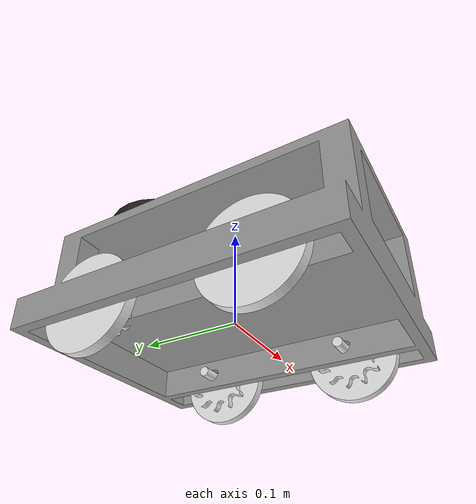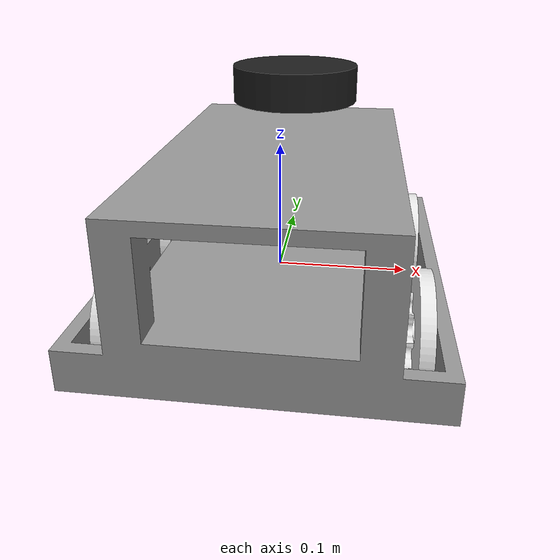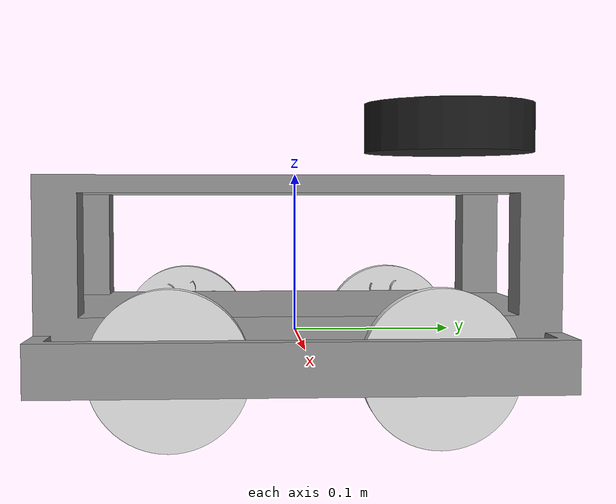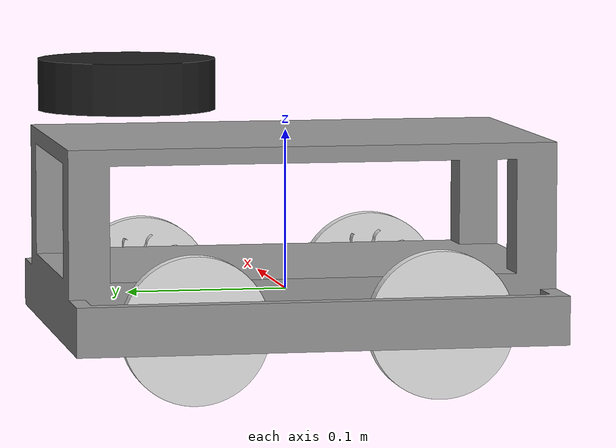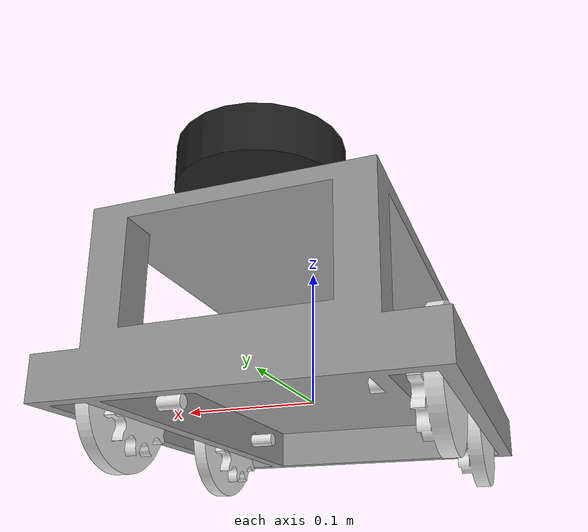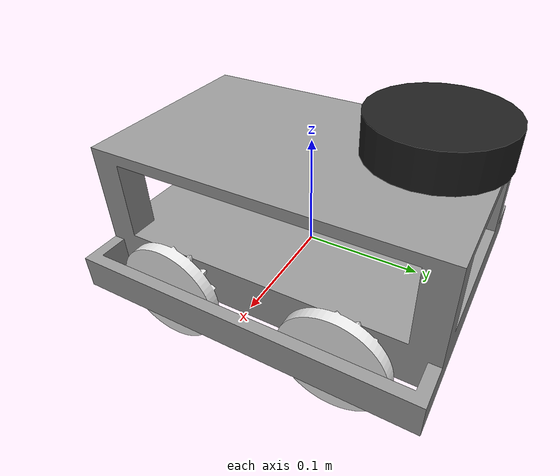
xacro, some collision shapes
<?xml version="1.0"?>
<robot xmlns:xacro="http://ros.org/wiki/xacro" name="mcubot">
	<xacro:include filename="$(find mcubot)/urdf/properties.xacro"/>
	<xacro:include filename="$(find mcubot)/urdf/model.gazebo.xacro"/>

	<xacro:property name="base_link_x" value="0" />
	<xacro:property name="base_link_y" value="0" />
	<xacro:property name="base_link_z" value="0" />				<!--TODO Location needs to be adjusted-->
	<xacro:property name="base_to_wheel_x" value="0.0975" />
	<xacro:property name="base_to_wheel_y" value="0.075" />
	<xacro:property name="base_to_wheel_z" value="-0.01" />
	<xacro:property name="base_to_lds_x" value="0.0" />
	<xacro:property name="base_to_lds_y" value="0.1" />
	<xacro:property name="base_to_lds_z" value="0.13" />

  <!-- Base Link -->
  <link name="base_link">
    <visual>
      <origin rpy="0 0 0" xyz="${base_link_x} ${base_link_y} ${base_link_z}"/>
      <material name="grey"/>
      <geometry>
        <mesh filename="package://mcubot/meshes/base.stl" scale="1 1 1"/>
      </geometry>
    </visual>
    <collision>
      <origin rpy="0 0 0" xyz="${base_link_x} ${base_link_y} ${base_link_z+0.040}"/>
      <geometry>
        <box size="0.25 0.32 0.14"/>
      </geometry>
    </collision>
  </link>

  <!--Front RIGHT Wheel-->
  <link name="front_right_wheel">
		<visual>
      <origin rpy="0 0 0" xyz="0 0 0"/>
      <material name="white"/>
      <geometry>
        <mesh filename="package://mcubot/meshes/wheel.stl" scale="1 1 1"/>
      </geometry>
    </visual>
    <collision>
      <origin xyz="0.01 0 0" rpy="0 1.5708 0"/>
      <geometry>
        <cylinder length="0.015" radius="0.046"/>
      </geometry>
    </collision>
    <inertial>
      <mass value="0.1" />
      <origin xyz="0 0 0" />
      <inertia ixx="0.001" ixy="0.0" ixz="0.0"
               iyy="0.001" iyz="0.0"
               izz="0.001" />
    </inertial>
  </link>

  <joint name="base_to_front_right_wheel" type="continuous">
  	<origin rpy="0 0 0" xyz="${base_to_wheel_x} ${base_to_wheel_y} ${base_to_wheel_z}"/>
  	<axis xyz="-1 0 0"/>
    <parent link="base_link"/>
    <child link="front_right_wheel"/>
  </joint>

  <!--Front LEFT Wheel-->
  <link name="front_left_wheel">
		<visual>
      <origin rpy="0 0 3.1415" xyz="0 0 0"/>
      <material name="white"/>
      <geometry>
        <mesh filename="package://mcubot/meshes/wheel.stl" scale="1 1 1"/>
      </geometry>
    </visual>
    <collision>
      <origin xyz="-0.01 0 0" rpy="0 1.5708 0"/>
      <geometry>
        <cylinder length="0.015" radius="0.046"/>
      </geometry>
    </collision>
    <inertial>
      <mass value="0.1" />
      <origin xyz="0 0 0" />
      <inertia ixx="0.001" ixy="0.0" ixz="0.0"
               iyy="0.001" iyz="0.0"
               izz="0.001" />
    </inertial>
  </link>

  <joint name="base_to_front_left_wheel" type="continuous">
  	<origin rpy="0 0 0" xyz="-${base_to_wheel_x} ${base_to_wheel_y} ${base_to_wheel_z}"/>
  	<axis xyz="-1 0 0"/>
    <parent link="base_link"/>
    <child link="front_left_wheel"/>
  </joint>

  <!--Back RIGHT Wheel-->
  <link name="back_right_wheel">
		<visual>
      <origin rpy="0 0 0" xyz="0 0 0"/>
      <material name="white"/>
      <geometry>
        <mesh filename="package://mcubot/meshes/wheel.stl" scale="1 1 1"/>
      </geometry>
    </visual>
    <collision>
      <origin xyz="0.01 0 0" rpy="0 1.5708 0"/>
      <geometry>
        <cylinder length="0.015" radius="0.046"/>
      </geometry>
    </collision>
    <inertial>
      <mass value="0.1" />
      <origin xyz="0 0 0" />
      <inertia ixx="0.001" ixy="0.0" ixz="0.0"
               iyy="0.001" iyz="0.0"
               izz="0.001" />
    </inertial>
  </link>

  <joint name="base_to_back_right_wheel" type="continuous">
  	<origin rpy="0 0 0" xyz="${base_to_wheel_x} -${base_to_wheel_y} ${base_to_wheel_z}"/>
  	<axis xyz="-1 0 0"/>
    <parent link="base_link"/>
    <child link="back_right_wheel"/>
  </joint>

  <!--Back LEFT Wheel-->
  <link name="back_left_wheel">
		<visual>
      <origin rpy="0 0 3.1415" xyz="0 0 0"/>
      <material name="white"/>
      <geometry>
        <mesh filename="package://mcubot/meshes/wheel.stl" scale="1 1 1"/>
      </geometry>
    </visual>
    <collision>
      <origin xyz="-0.01 0 0" rpy="0 1.5708 0"/>
      <geometry>
        <cylinder length="0.015" radius="0.046"/>
      </geometry>
    </collision>
    <inertial>
      <mass value="0.1" />
      <origin xyz="0 0 0" />
      <inertia ixx="0.001" ixy="0.0" ixz="0.0"
               iyy="0.001" iyz="0.0"
               izz="0.001" />
    </inertial>
  </link>

  <joint name="base_to_back_left_wheel" type="continuous">
  	<origin rpy="0 0 0" xyz="-${base_to_wheel_x} -${base_to_wheel_y} ${base_to_wheel_z}"/>
  	<axis xyz="-1 0 0"/>
    <parent link="base_link"/>
    <child link="back_left_wheel"/>
  </joint>

	<!--Lidar Sensor-->
  <link name="base_scan">
    <visual>
      <origin xyz="0 0 0.0" rpy="0 0 1.5708"/>
      <material name="black"/>
      <geometry>
        <mesh filename="package://mcubot/meshes/lds.stl" scale="0.001 0.001 0.001"/>
      </geometry>
      <material name="dark"/>
    </visual>
    <collision>
      <origin xyz="0 0 0" rpy="0 0 1.5708"/>
      <geometry>
        <cylinder length="0.0315" radius="0.055"/>
      </geometry>
    </collision>
    <inertial>
      <mass value="0.114" />
      <origin xyz="0 0 0" />
      <inertia ixx="0.001" ixy="0.0" ixz="0.0"
               iyy="0.001" iyz="0.0"
               izz="0.001" />
    </inertial>
  </link>

  <joint name="scan_joint" type="fixed">
    <parent link="base_link"/>
    <child link="base_scan"/>
    <origin xyz="${base_to_lds_x} ${base_to_lds_y} ${base_to_lds_z}" rpy="0 0 0"/>
  </joint>

</robot>
